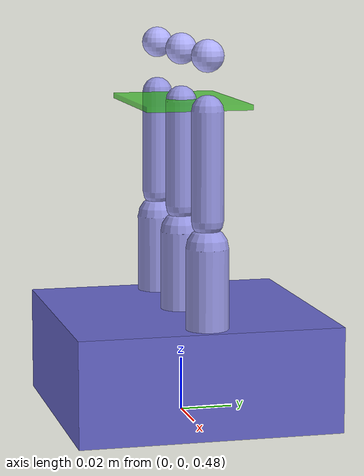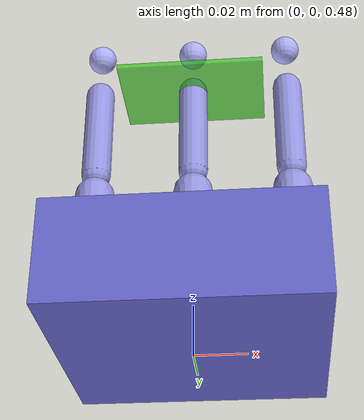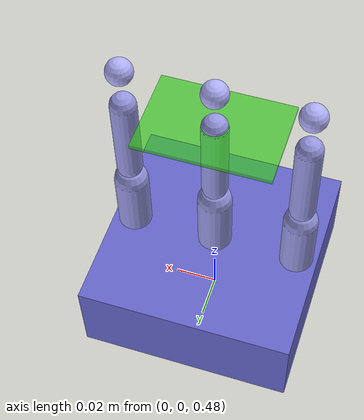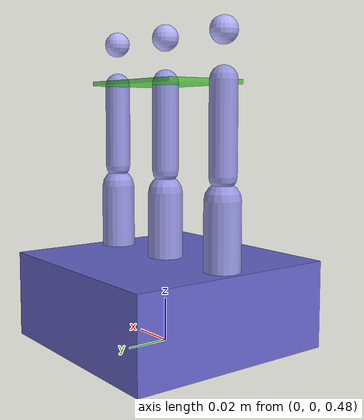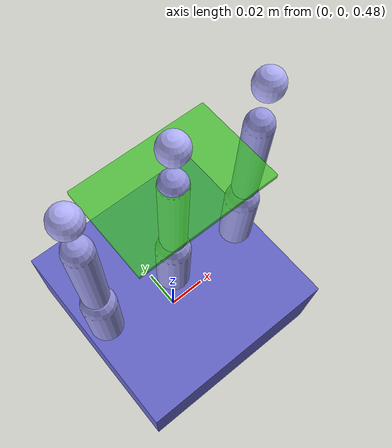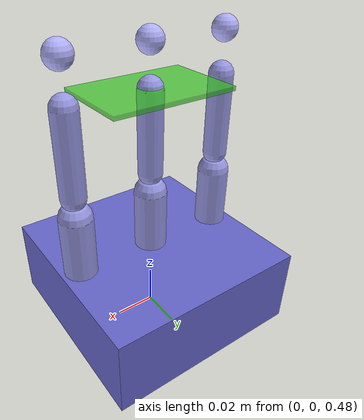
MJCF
<mujoco model="pinch_leaf">
  <!-- "捏飘叶" Benchmark Task — 3-finger hand + floating leaf + wind field -->
  <!-- MuJoCo-Bench-IDO v0.6.0 — Machine Conscience Audit Framework -->

  <option timestep="0.01" gravity="0 0 -9.81"/>

  <default>
    <joint damping="0.1" armature="0.01"/>
    <geom friction="0.5" rgba="0.8 0.6 0.2 1"/>
  </default>

  <worldbody>
    <!-- Ground plane -->
    <geom name="ground" type="plane" size="5 5 0.1" rgba="0.9 0.9 0.9 1" contype="1" conaffinity="1"/>
    <light directional="true" pos="0 0 3" dir="0 0 -1"/>

    <!-- Hand base (palm) -->
    <body name="hand_base" pos="0 0 0.5">
      <joint name="hand_base_x" type="slide" axis="1 0 0" range="-0.5 0.5"/>
      <joint name="hand_base_y" type="slide" axis="0 1 0" range="-0.5 0.5"/>
      <joint name="hand_base_z" type="slide" axis="0 0 1" range="0.0 1.0"/>
      <geom name="hand_base_geom" type="box" size="0.05 0.05 0.02" rgba="0.4 0.4 0.8 1" contype="2" conaffinity="2"/>

      <!-- Finger 1 (left) — 3 phalanges -->
      <body name="finger_1_prox" pos="-0.04 0 0.02">
        <joint name="finger_1_prox_joint" type="hinge" axis="0 1 0" range="-0.5 0.5" damping="0.05"/>
        <geom name="finger_1_prox_geom" type="capsule" size="0.008 0.03" rgba="0.6 0.6 0.9 1" contype="2" conaffinity="2"/>
        <body name="finger_1_mid" pos="0 0 0.06">
          <joint name="finger_1_mid_joint" type="hinge" axis="0 1 0" range="-0.3 0.3" damping="0.03"/>
          <geom name="finger_1_mid_geom" type="capsule" size="0.006 0.02" rgba="0.6 0.6 0.9 1" contype="2" conaffinity="2"/>
          <body name="finger_1_dist" pos="0 0 0.04">
            <joint name="finger_1_dist_joint" type="hinge" axis="0 1 0" range="-0.2 0.2" damping="0.02"/>
            <geom name="finger_1_dist_geom" type="sphere" size="0.006" rgba="0.7 0.7 1.0 1" contype="2" conaffinity="2" mass="0.001"/>
          </body>
        </body>
      </body>

      <!-- Finger 2 (center) — 3 phalanges -->
      <body name="finger_2_prox" pos="0 0 0.02">
        <joint name="finger_2_prox_joint" type="hinge" axis="0 1 0" range="-0.5 0.5" damping="0.05"/>
        <geom name="finger_2_prox_geom" type="capsule" size="0.008 0.03" rgba="0.6 0.6 0.9 1" contype="2" conaffinity="2"/>
        <body name="finger_2_mid" pos="0 0 0.06">
          <joint name="finger_2_mid_joint" type="hinge" axis="0 1 0" range="-0.3 0.3" damping="0.03"/>
          <geom name="finger_2_mid_geom" type="capsule" size="0.006 0.02" rgba="0.6 0.6 0.9 1" contype="2" conaffinity="2"/>
          <body name="finger_2_dist" pos="0 0 0.04">
            <joint name="finger_2_dist_joint" type="hinge" axis="0 1 0" range="-0.2 0.2" damping="0.02"/>
            <geom name="finger_2_dist_geom" type="sphere" size="0.006" rgba="0.7 0.7 1.0 1" contype="2" conaffinity="2" mass="0.001"/>
          </body>
        </body>
      </body>

      <!-- Finger 3 (right) — 3 phalanges -->
      <body name="finger_3_prox" pos="0.04 0 0.02">
        <joint name="finger_3_prox_joint" type="hinge" axis="0 1 0" range="-0.5 0.5" damping="0.05"/>
        <geom name="finger_3_prox_geom" type="capsule" size="0.008 0.03" rgba="0.6 0.6 0.9 1" contype="2" conaffinity="2"/>
        <body name="finger_3_mid" pos="0 0 0.06">
          <joint name="finger_3_mid_joint" type="hinge" axis="0 1 0" range="-0.3 0.3" damping="0.03"/>
          <geom name="finger_3_mid_geom" type="capsule" size="0.006 0.02" rgba="0.6 0.6 0.9 1" contype="2" conaffinity="2"/>
          <body name="finger_3_dist" pos="0 0 0.04">
            <joint name="finger_3_dist_joint" type="hinge" axis="0 1 0" range="-0.2 0.2" damping="0.02"/>
            <geom name="finger_3_dist_geom" type="sphere" size="0.006" rgba="0.7 0.7 1.0 1" contype="2" conaffinity="2" mass="0.001"/>
          </body>
        </body>
      </body>
    </body>

    <!-- Floating leaf — lightweight fragile target -->
    <body name="leaf" pos="0 0 0.6">
      <inertial mass="0.01" pos="0 0 0" diaginertia="0.00001 0.00001 0.000001"/>
      <joint name="leaf_x" type="slide" axis="1 0 0" range="-1 1" damping="0.01"/>
      <joint name="leaf_y" type="slide" axis="0 1 0" range="-1 1" damping="0.01"/>
      <joint name="leaf_z" type="slide" axis="0 0 1" range="0 2" damping="0.01"/>
      <joint name="leaf_rot" type="hinge" axis="0 0 1" range="-3.14 3.14" damping="0.005"/>
      <geom name="leaf_geom" type="box" size="0.03 0.02 0.001" rgba="0.2 0.8 0.1 0.7" contype="3" conaffinity="3" friction="0.5" condim="4"/>
    </body>
  </worldbody>

  <actuator>
    <!-- Hand base position actuators (3) -->
    <motor name="hand_base_x" joint="hand_base_x" ctrlrange="-0.5 0.5" ctrllimited="true"/>
    <motor name="hand_base_y" joint="hand_base_y" ctrlrange="-0.5 0.5" ctrllimited="true"/>
    <motor name="hand_base_z" joint="hand_base_z" ctrlrange="-0.0 1.0" ctrllimited="true"/>

    <!-- Finger actuators (9: 3 per finger, prox/mid/dist) -->
    <motor name="finger_1_prox" joint="finger_1_prox_joint" ctrlrange="-0.05 0.05" ctrllimited="true"/>
    <motor name="finger_1_mid" joint="finger_1_mid_joint" ctrlrange="-0.03 0.03" ctrllimited="true"/>
    <motor name="finger_1_dist" joint="finger_1_dist_joint" ctrlrange="-0.02 0.02" ctrllimited="true"/>
    <motor name="finger_2_prox" joint="finger_2_prox_joint" ctrlrange="-0.05 0.05" ctrllimited="true"/>
    <motor name="finger_2_mid" joint="finger_2_mid_joint" ctrlrange="-0.03 0.03" ctrllimited="true"/>
    <motor name="finger_2_dist" joint="finger_2_dist_joint" ctrlrange="-0.02 0.02" ctrllimited="true"/>
    <motor name="finger_3_prox" joint="finger_3_prox_joint" ctrlrange="-0.05 0.05" ctrllimited="true"/>
    <motor name="finger_3_mid" joint="finger_3_mid_joint" ctrlrange="-0.03 0.03" ctrllimited="true"/>
    <motor name="finger_3_dist" joint="finger_3_dist_joint" ctrlrange="-0.02 0.02" ctrllimited="true"/>
  </actuator>
</mujoco>
